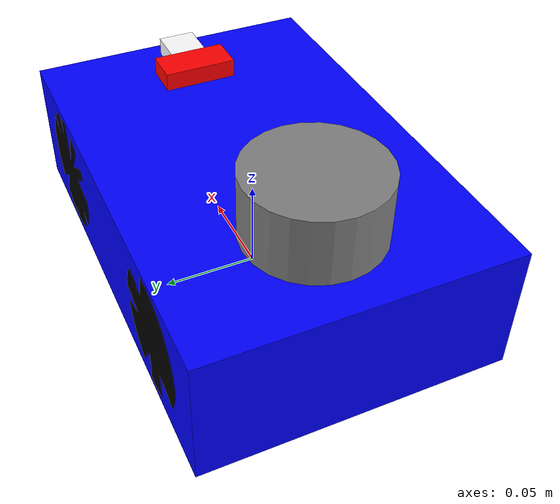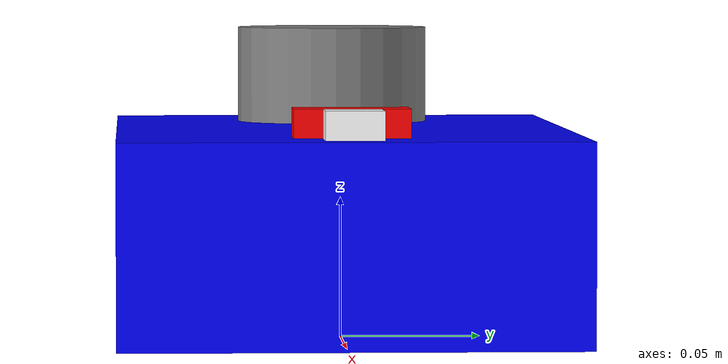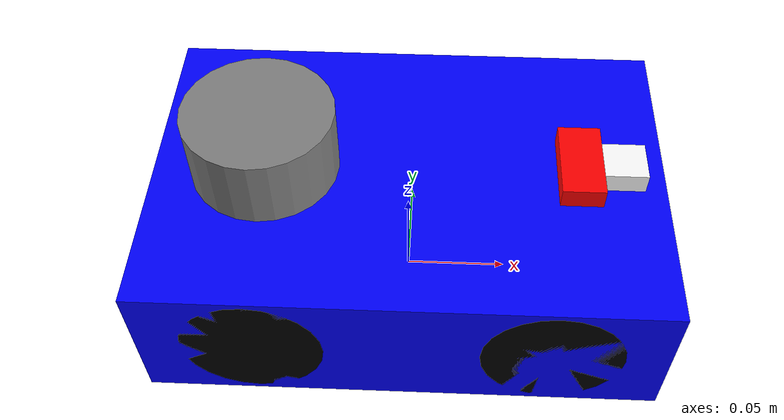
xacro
<?xml version="1.0"?>
<robot xmlns:xacro="http://www.ros.org/wiki/xacro" name="picar_robot">

  <xacro:include filename="picar_materials.xacro" />
  <xacro:picar_materials />

  <!-- Properties -->
  <xacro:property name="base_length" value="0.24"/>
  <xacro:property name="base_width" value="0.16"/>
  <xacro:property name="base_height" value="0.07"/>

  <xacro:property name="wheel_radius" value="0.0325"/>
  <xacro:property name="wheel_width" value="0.02"/>
  <xacro:property name="wheel_offset_x" value="0.0675"/>
  <xacro:property name="wheel_offset_y" value="0.07"/>

  <xacro:property name="lidar_radius" value="0.035"/>
  <xacro:property name="lidar_height" value="0.035"/>

  <!-- Base Link -->
  <link name="base_footprint"/>

  <joint name="base_joint" type="fixed">
    <parent link="base_footprint"/>
    <child link="base_link"/>
    <origin xyz="0 0 0.04" rpy="0 0 0"/>
  </joint>

  <link name="base_link">
    <visual>
      <geometry>
        <box size="${base_length} ${base_width} ${base_height}"/>
      </geometry>
      <material name="blue"/>
    </visual>
    <collision>
      <geometry>
        <box size="${base_length} ${base_width} ${base_height}"/>
      </geometry>
    </collision>
    <inertial>
      <mass value="1.5"/>
      <inertia ixx="0.0038" ixy="0" ixz="0" iyy="0.0078" iyz="0" izz="0.0104"/>
    </inertial>
  </link>

  <!-- Wheel Macro -->
  <xacro:macro name="wheel" params="prefix x_reflect y_reflect">
    <link name="${prefix}_wheel">
      <visual>
        <origin xyz="0 0 0" rpy="${pi/2} 0 0"/>
        <geometry>
          <cylinder radius="${wheel_radius}" length="${wheel_width}"/>
        </geometry>
        <material name="black"/>
      </visual>
      <collision>
        <origin xyz="0 0 0" rpy="${pi/2} 0 0"/>
        <geometry>
          <cylinder radius="${wheel_radius}" length="${wheel_width}"/>
        </geometry>
      </collision>
      <inertial>
        <mass value="0.1"/>
        <inertia ixx="0.0001" ixy="0" ixz="0" iyy="0.0001" iyz="0" izz="0.0001"/>
      </inertial>
    </link>

    <joint name="${prefix}_wheel_joint" type="continuous">
      <parent link="base_link"/>
      <child link="${prefix}_wheel"/>
      <origin xyz="${x_reflect * wheel_offset_x} ${y_reflect * wheel_offset_y} 0" rpy="0 0 0"/>
      <axis xyz="0 1 0"/>
    </joint>
  </xacro:macro>

  <xacro:wheel prefix="front_left"  x_reflect="1"  y_reflect="1" />
  <xacro:wheel prefix="front_right" x_reflect="1"  y_reflect="-1" />
  <xacro:wheel prefix="rear_left"   x_reflect="-1" y_reflect="1" />
  <xacro:wheel prefix="rear_right"  x_reflect="-1" y_reflect="-1" />

  <!-- LiDAR -->
  <link name="lidar_link">
    <visual>
      <geometry>
        <cylinder radius="${lidar_radius}" length="${lidar_height}"/>
      </geometry>
      <material name="grey"/>
    </visual>
    <collision>
      <geometry>
        <cylinder radius="${lidar_radius}" length="${lidar_height}"/>
      </geometry>
    </collision>
    <inertial>
      <mass value="0.1"/>
      <inertia ixx="0.0001" ixy="0" ixz="0" iyy="0.0001" iyz="0" izz="0.0001"/>
    </inertial>
  </link>

  <joint name="lidar_joint" type="fixed">
    <parent link="base_link"/>
    <child link="lidar_link"/>
    <origin xyz="${-wheel_offset_x} 0 ${base_height/2 + lidar_height/2}" rpy="0 0 0"/>
  </joint>

  <!-- Sonar Placeholder -->
  <link name="sonar_link">
    <visual>
      <geometry>
        <box size="0.02 0.02 0.02"/>
      </geometry>
      <material name="white"/>
    </visual>
    <collision>
      <geometry>
        <box size="0.02 0.02 0.02"/>
      </geometry>
    </collision>
    <inertial>
      <mass value="0.05"/>
      <inertia ixx="0.00001" ixy="0" ixz="0" iyy="0.00001" iyz="0" izz="0.00001"/>
    </inertial>
  </link>

  <joint name="sonar_joint" type="fixed">
    <parent link="base_link"/>
    <child link="sonar_link"/>
    <origin xyz="${0.1} 0 ${base_height/2}" rpy="0 0 0"/>
  </joint>

  <!-- Camera Placeholder -->
  <link name="camera_link">
    <visual>
      <geometry>
        <box size="0.02 0.04 0.02"/>
      </geometry>
      <material name="red"/>
    </visual>
    <collision>
      <geometry>
        <box size="0.02 0.04 0.02"/>
      </geometry>
    </collision>
    <inertial>
      <mass value="0.05"/>
      <inertia ixx="0.00001" ixy="0" ixz="0" iyy="0.00001" iyz="0" izz="0.00001"/>
    </inertial>
  </link>

  <joint name="camera_joint" type="fixed">
    <parent link="base_link"/>
    <child link="camera_link"/>
    <origin xyz="0.08 0 ${base_height/2}" rpy="0 0 0"/>
  </joint>

  <!-- Gazebo Sim Plugins -->
  <gazebo>
    <plugin
      filename="ignition-gazebo6-diff-drive-system"
      name="ignition::gazebo::systems::DiffDrive">
      <left_joint>front_left_wheel_joint</left_joint>
      <right_joint>front_right_wheel_joint</right_joint>
      <wheel_separation>${wheel_offset_y * 2}</wheel_separation>
      <wheel_radius>${wheel_radius}</wheel_radius>
      <topic>picar/cmd_vel</topic>
      <odom_topic>odom</odom_topic>
      <tf_topic>tf</tf_topic>
      <frame_id>base_footprint</frame_id>
      <child_frame_id>base_link</child_frame_id>
    </plugin>

    <plugin
      filename="ignition-gazebo6-joint-state-publisher-system"
      name="ignition::gazebo::systems::JointStatePublisher">
      <topic>joint_states</topic>
    </plugin>
  </gazebo>

  <gazebo reference="lidar_link">
    <sensor name="gpu_lidar" type="gpu_lidar">
      <pose>0 0 0.2 0 0 0</pose>
      <topic>scan</topic>
      <update_rate>12</update_rate>
      <lidar>
        <scan>
          <horizontal>
            <samples>360</samples>
            <resolution>1</resolution>
            <min_angle>-3.14159</min_angle>
            <max_angle>3.14159</max_angle>
          </horizontal>
        </scan>
      <range>
        <min>0.10</min>
        <max>12.0</max>
        <resolution>0.01</resolution>
      </range>
      <noise>
        <type>gaussian</type><mean>0.0</mean><stddev>0.01</stddev>
      </noise>
      <frame_id>lidar_link</frame_id>
    </lidar>
    <always_on>true</always_on>
    <visualize>false</visualize>
  </sensor>
  </gazebo>
</robot>

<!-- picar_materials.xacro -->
<robot xmlns:xacro="http://www.ros.org/wiki/xacro">

  <xacro:macro name="picar_materials" params="">
    <material name="red">
      <color rgba="1.0 0.0 0.0 1.0"/>
    </material>
    <material name="black">
      <color rgba="0.0 0.0 0.0 1.0"/>
    </material>
    <material name="white">
      <color rgba="1.0 1.0 1.0 1.0"/>
    </material>
    <material name="blue">
      <color rgba="0.0 0.0 1.0 1.0"/>
    </material>
    <material name="grey">
      <color rgba="0.5 0.5 0.5 1.0"/>
    </material>
    <material name="orange">
      <color rgba="1.0 0.5 0.0 1.0"/>
    </material>
    <material name="green">
      <color rgba="0.0 1.0 0.0 1.0"/>
    </material>
  </xacro:macro>

</robot>
